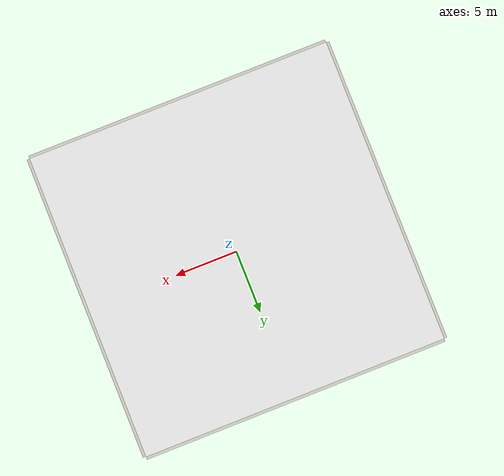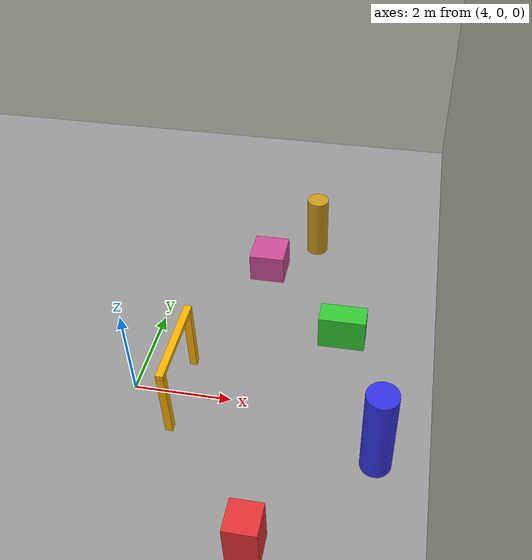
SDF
<?xml version="1.0" ?>
<sdf version="1.9">
  <world name="indoor_room_px4">

    <physics type="ode">
      <max_step_size>0.004</max_step_size>
      <real_time_factor>1.0</real_time_factor>
      <real_time_update_rate>250</real_time_update_rate>
    </physics>
    <gravity>0 0 -9.8</gravity>
    <magnetic_field>6e-06 2.3e-05 -4.2e-05</magnetic_field>
    <atmosphere type="adiabatic"/>

    <scene>
      <ambient>0.6 0.6 0.6</ambient>
      <background>0.2 0.2 0.2</background>
      <shadows>true</shadows>
    </scene>

    <!-- ── GUI — same camera feeds as outdoor_field_px4 / ArduPilot indoor ── -->
    <gui fullscreen="0">
      <plugin filename="MinimalScene" name="3D View">
        <gz-gui>
          <title>3D View</title>
          <property type="bool" key="showTitleBar">false</property>
          <property type="string" key="state">docked</property>
        </gz-gui>
        <engine>ogre2</engine>
        <scene>scene</scene>
        <ambient_light>0.4 0.4 0.4</ambient_light>
        <background_color>0.2 0.2 0.2</background_color>
        <camera_pose>-5 0 8 0 0.8 0</camera_pose>
      </plugin>
      <plugin filename="EntityContextMenuPlugin" name="Entity context menu">
        <gz-gui>
          <property key="state" type="string">floating</property>
          <property key="width" type="double">5</property>
          <property key="height" type="double">5</property>
          <property key="showTitleBar" type="bool">false</property>
        </gz-gui>
      </plugin>
      <plugin filename="GzSceneManager" name="Scene Manager">
        <gz-gui>
          <property key="resizable" type="bool">false</property>
          <property key="width" type="double">5</property>
          <property key="height" type="double">5</property>
          <property key="state" type="string">floating</property>
          <property key="showTitleBar" type="bool">false</property>
        </gz-gui>
      </plugin>
      <plugin filename="InteractiveViewControl" name="Interactive view control">
        <gz-gui>
          <property key="resizable" type="bool">false</property>
          <property key="width" type="double">5</property>
          <property key="height" type="double">5</property>
          <property key="state" type="string">floating</property>
          <property key="showTitleBar" type="bool">false</property>
        </gz-gui>
      </plugin>
      <plugin filename="CameraTracking" name="Camera Tracking">
        <gz-gui>
          <property key="resizable" type="bool">false</property>
          <property key="width" type="double">5</property>
          <property key="height" type="double">5</property>
          <property key="state" type="string">floating</property>
          <property key="showTitleBar" type="bool">false</property>
        </gz-gui>
      </plugin>
      <plugin filename="WorldControl" name="World control">
        <gz-gui>
          <title>World control</title>
          <property type="bool" key="showTitleBar">false</property>
          <property type="bool" key="resizable">false</property>
          <property type="double" key="height">72</property>
          <property type="double" key="width">145</property>
          <property type="double" key="z">1</property>
          <property type="string" key="state">floating</property>
          <anchors target="3D View">
            <line own="left" target="left"/>
            <line own="bottom" target="bottom"/>
          </anchors>
        </gz-gui>
        <play_pause>true</play_pause>
        <step>true</step>
        <start_paused>false</start_paused>
      </plugin>
      <plugin filename="WorldStats" name="World stats">
        <gz-gui>
          <title>World stats</title>
          <property type="bool" key="showTitleBar">false</property>
          <property type="bool" key="resizable">false</property>
          <property type="double" key="height">110</property>
          <property type="double" key="width">290</property>
          <property type="double" key="z">1</property>
          <property type="string" key="state">floating</property>
          <anchors target="3D View">
            <line own="right" target="right"/>
            <line own="bottom" target="bottom"/>
          </anchors>
        </gz-gui>
        <sim_time>true</sim_time>
        <real_time>true</real_time>
        <real_time_factor>true</real_time_factor>
        <iterations>false</iterations>
      </plugin>
      <plugin filename="ImageDisplay" name="Front Camera RGB">
        <gz-gui>
          <property type="string" key="state">docked_collapsed</property>
        </gz-gui>
        <topic>/front_camera/image</topic>
      </plugin>
      <plugin filename="ImageDisplay" name="Front Camera Depth">
        <gz-gui>
          <property type="string" key="state">docked_collapsed</property>
        </gz-gui>
        <topic>/front_camera/depth_image</topic>
      </plugin>
      <plugin filename="ImageDisplay" name="Down Camera">
        <gz-gui>
          <property type="string" key="state">docked_collapsed</property>
        </gz-gui>
        <topic>/down_camera</topic>
      </plugin>
      <plugin filename="TopicEcho" name="Topic Echo">
        <gz-gui>
          <property type="string" key="state">docked_collapsed</property>
        </gz-gui>
      </plugin>
    </gui>

    <spherical_coordinates>
      <surface_model>EARTH_WGS84</surface_model>
      <world_frame_orientation>ENU</world_frame_orientation>
      <latitude_deg>0.0</latitude_deg>
      <longitude_deg>40.0</longitude_deg>
      <elevation>0</elevation>
      <heading_deg>0</heading_deg>
    </spherical_coordinates>

    <!-- Indoor lighting (4 lights to cover 20×20 m room) -->
    <light type="point" name="ceiling_light_1">
      <pose>-5 -5 11.5 0 0 0</pose>
      <diffuse>1.0 1.0 1.0 1</diffuse>
      <specular>0.3 0.3 0.3 1</specular>
      <attenuation>
        <range>30</range>
        <constant>0.5</constant>
        <linear>0.02</linear>
        <quadratic>0.003</quadratic>
      </attenuation>
    </light>
    <light type="point" name="ceiling_light_2">
      <pose>-5 5 11.5 0 0 0</pose>
      <diffuse>1.0 1.0 1.0 1</diffuse>
      <specular>0.3 0.3 0.3 1</specular>
      <attenuation>
        <range>30</range>
        <constant>0.5</constant>
        <linear>0.02</linear>
        <quadratic>0.003</quadratic>
      </attenuation>
    </light>
    <light type="point" name="ceiling_light_3">
      <pose>5 -5 11.5 0 0 0</pose>
      <diffuse>1.0 1.0 1.0 1</diffuse>
      <specular>0.3 0.3 0.3 1</specular>
      <attenuation>
        <range>30</range>
        <constant>0.5</constant>
        <linear>0.02</linear>
        <quadratic>0.003</quadratic>
      </attenuation>
    </light>
    <light type="point" name="ceiling_light_4">
      <pose>5 5 11.5 0 0 0</pose>
      <diffuse>1.0 1.0 1.0 1</diffuse>
      <specular>0.3 0.3 0.3 1</specular>
      <attenuation>
        <range>30</range>
        <constant>0.5</constant>
        <linear>0.02</linear>
        <quadratic>0.003</quadratic>
      </attenuation>
    </light>

    <!-- Shared scenery (enclosed room + obstacles) — same as ArduPilot indoor -->
    <include>
      <uri>model://indoor_room_scenery</uri>
    </include>

    <!-- Drone is NOT embedded; PX4 spawns x500_nectar at startup
         (PX4_SIM_MODEL=gz_x500_nectar, PX4_GZ_MODEL_POSE=-5,0,0.2). -->

  </world>
</sdf>

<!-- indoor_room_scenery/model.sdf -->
<sdf version="1.9">
  <model name="indoor_room_scenery">
    <static>true</static>

    <link name="floor">
      <pose>0 0 -0.05 0 0 0</pose>
      <collision name="collision">
        <geometry><box><size>20 20 0.1</size></box></geometry>
      </collision>
      <visual name="visual">
        <geometry><box><size>20 20 0.1</size></box></geometry>
        <material>
          <ambient>0.6 0.6 0.6 1</ambient>
          <diffuse>0.6 0.6 0.6 1</diffuse>
        </material>
      </visual>
    </link>

    <link name="wall_north">
      <pose>0 10.1 6 0 0 0</pose>
      <collision name="collision">
        <geometry><box><size>20 0.2 12</size></box></geometry>
      </collision>
      <visual name="visual">
        <geometry><box><size>20 0.2 12</size></box></geometry>
        <material>
          <ambient>0.8 0.8 0.75 1</ambient>
          <diffuse>0.8 0.8 0.75 1</diffuse>
        </material>
      </visual>
    </link>
    <link name="wall_south">
      <pose>0 -10.1 6 0 0 0</pose>
      <collision name="collision">
        <geometry><box><size>20 0.2 12</size></box></geometry>
      </collision>
      <visual name="visual">
        <geometry><box><size>20 0.2 12</size></box></geometry>
        <material>
          <ambient>0.8 0.8 0.75 1</ambient>
          <diffuse>0.8 0.8 0.75 1</diffuse>
        </material>
      </visual>
    </link>
    <link name="wall_east">
      <pose>10.1 0 6 0 0 0</pose>
      <collision name="collision">
        <geometry><box><size>0.2 20 12</size></box></geometry>
      </collision>
      <visual name="visual">
        <geometry><box><size>0.2 20 12</size></box></geometry>
        <material>
          <ambient>0.8 0.8 0.75 1</ambient>
          <diffuse>0.8 0.8 0.75 1</diffuse>
        </material>
      </visual>
    </link>
    <link name="wall_west">
      <pose>-10.1 0 6 0 0 0</pose>
      <collision name="collision">
        <geometry><box><size>0.2 20 12</size></box></geometry>
      </collision>
      <visual name="visual">
        <geometry><box><size>0.2 20 12</size></box></geometry>
        <material>
          <ambient>0.8 0.8 0.75 1</ambient>
          <diffuse>0.8 0.8 0.75 1</diffuse>
        </material>
      </visual>
    </link>

    <link name="ceiling">
      <pose>0 0 12.05 0 0 0</pose>
      <collision name="collision">
        <geometry><box><size>20 20 0.1</size></box></geometry>
      </collision>
      <visual name="visual">
        <geometry><box><size>20 20 0.1</size></box></geometry>
        <material>
          <ambient>0.9 0.9 0.9 1</ambient>
          <diffuse>0.9 0.9 0.9 1</diffuse>
        </material>
      </visual>
    </link>

    <link name="gate_left_post">
      <pose>5 -0.85 0.75 0 0 0</pose>
      <collision name="collision">
        <geometry><box><size>0.15 0.15 1.5</size></box></geometry>
      </collision>
      <visual name="visual">
        <geometry><box><size>0.15 0.15 1.5</size></box></geometry>
        <material>
          <ambient>0.9 0.6 0.0 1</ambient>
          <diffuse>1.0 0.7 0.0 1</diffuse>
        </material>
      </visual>
    </link>
    <link name="gate_right_post">
      <pose>5 0.85 0.75 0 0 0</pose>
      <collision name="collision">
        <geometry><box><size>0.15 0.15 1.5</size></box></geometry>
      </collision>
      <visual name="visual">
        <geometry><box><size>0.15 0.15 1.5</size></box></geometry>
        <material>
          <ambient>0.9 0.6 0.0 1</ambient>
          <diffuse>1.0 0.7 0.0 1</diffuse>
        </material>
      </visual>
    </link>
    <link name="gate_crossbar">
      <pose>5 0 1.55 0 0 0</pose>
      <collision name="collision">
        <geometry><box><size>0.15 1.85 0.1</size></box></geometry>
      </collision>
      <visual name="visual">
        <geometry><box><size>0.15 1.85 0.1</size></box></geometry>
        <material>
          <ambient>0.9 0.6 0.0 1</ambient>
          <diffuse>1.0 0.7 0.0 1</diffuse>
        </material>
      </visual>
    </link>

    <link name="obstacle_box_1">
      <pose>7 -3 0.5 0 0 0</pose>
      <collision name="collision">
        <geometry><box><size>0.6 0.6 1.0</size></box></geometry>
      </collision>
      <visual name="visual">
        <geometry><box><size>0.6 0.6 1.0</size></box></geometry>
        <material>
          <ambient>0.8 0.2 0.2 1</ambient>
          <diffuse>0.9 0.2 0.2 1</diffuse>
        </material>
      </visual>
    </link>
    <link name="obstacle_box_2">
      <pose>8 2 0.4 0 0 0</pose>
      <collision name="collision">
        <geometry><box><size>1.0 0.5 0.8</size></box></geometry>
      </collision>
      <visual name="visual">
        <geometry><box><size>1.0 0.5 0.8</size></box></geometry>
        <material>
          <ambient>0.2 0.7 0.2 1</ambient>
          <diffuse>0.2 0.8 0.2 1</diffuse>
        </material>
      </visual>
    </link>
    <link name="obstacle_box_3">
      <pose>6 4 0.35 0 0 0</pose>
      <collision name="collision">
        <geometry><box><size>0.8 0.8 0.7</size></box></geometry>
      </collision>
      <visual name="visual">
        <geometry><box><size>0.8 0.8 0.7</size></box></geometry>
        <material>
          <ambient>0.7 0.2 0.5 1</ambient>
          <diffuse>0.8 0.3 0.6 1</diffuse>
        </material>
      </visual>
    </link>

    <link name="obstacle_cylinder_1">
      <pose>9 -1 1.0 0 0 0</pose>
      <collision name="collision">
        <geometry><cylinder><radius>0.3</radius><length>2.0</length></cylinder></geometry>
      </collision>
      <visual name="visual">
        <geometry><cylinder><radius>0.3</radius><length>2.0</length></cylinder></geometry>
        <material>
          <ambient>0.2 0.2 0.8 1</ambient>
          <diffuse>0.2 0.2 0.9 1</diffuse>
        </material>
      </visual>
    </link>
    <link name="obstacle_cylinder_2">
      <pose>7 5 0.75 0 0 0</pose>
      <collision name="collision">
        <geometry><cylinder><radius>0.25</radius><length>1.5</length></cylinder></geometry>
      </collision>
      <visual name="visual">
        <geometry><cylinder><radius>0.25</radius><length>1.5</length></cylinder></geometry>
        <material>
          <ambient>0.7 0.5 0.1 1</ambient>
          <diffuse>0.8 0.6 0.1 1</diffuse>
        </material>
      </visual>
    </link>
    <link name="obstacle_cylinder_3">
      <pose>8 -6 0.5 0 0 0</pose>
      <collision name="collision">
        <geometry><cylinder><radius>0.4</radius><length>1.0</length></cylinder></geometry>
      </collision>
      <visual name="visual">
        <geometry><cylinder><radius>0.4</radius><length>1.0</length></cylinder></geometry>
        <material>
          <ambient>0.5 0.1 0.7 1</ambient>
          <diffuse>0.6 0.1 0.8 1</diffuse>
        </material>
      </visual>
    </link>
  </model>
</sdf>
